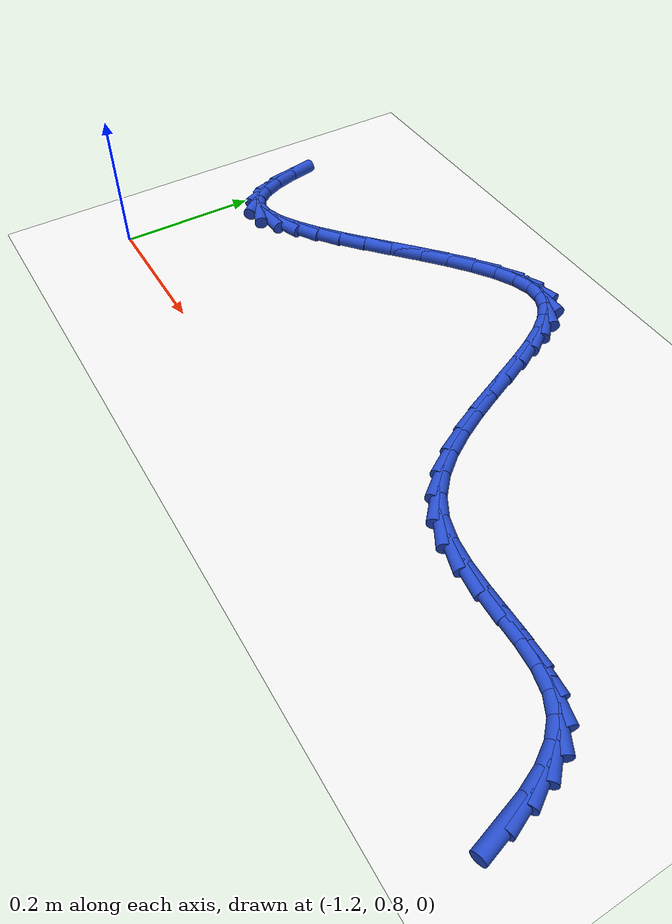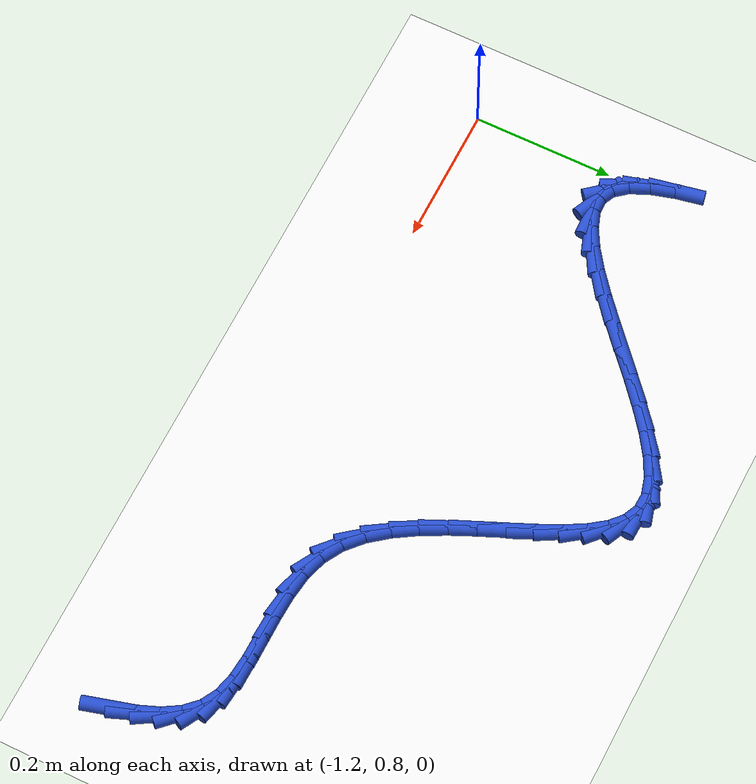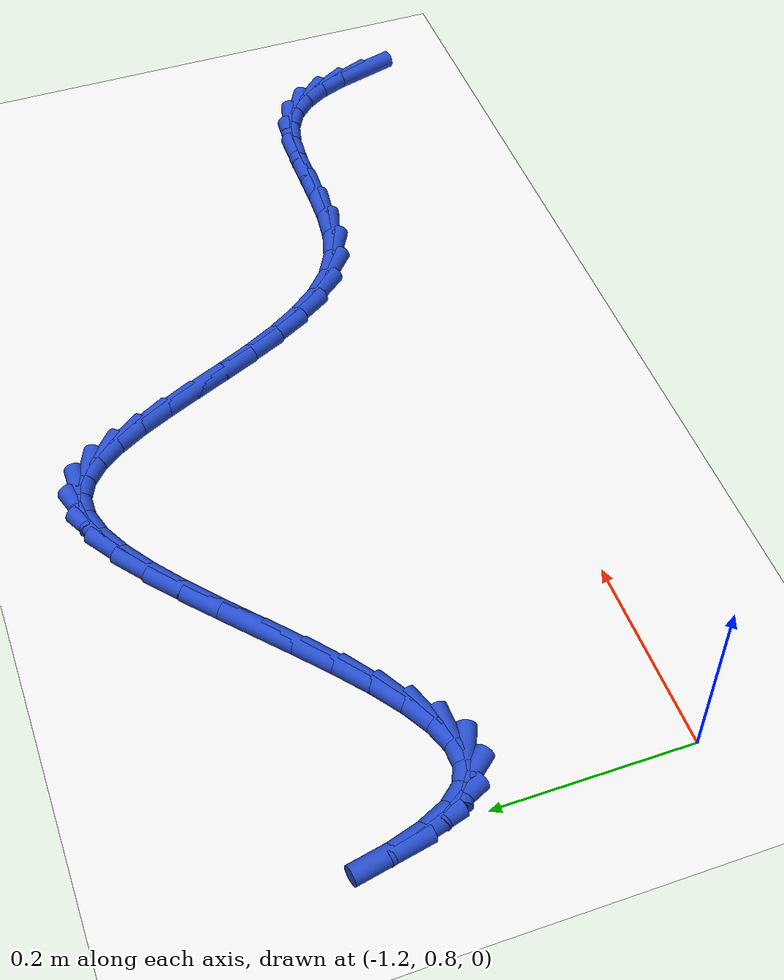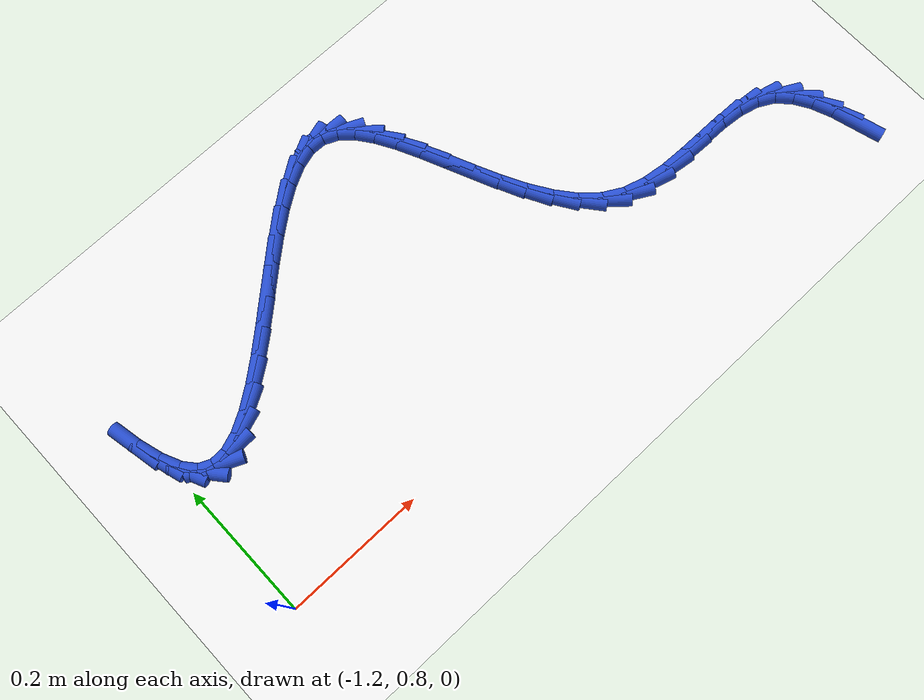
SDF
<sdf version="1.6">
 <world name="default">
  <model name="ground_plane">
   <static>1</static>
   <link name="link">
    <collision name="collision">
     <geometry><plane><normal>0 0 1</normal><size>100 100</size></plane></geometry>
     <surface><friction><ode><mu>100</mu><mu2>50</mu2></ode></friction></surface>
    </collision>
    <visual name="visual">
     <cast_shadows>0</cast_shadows>
     <geometry><plane><normal>0 0 1</normal><size>100 100</size></plane></geometry>
     <material>
      <script><uri>file://media/materials/scripts/gazebo.material</uri><name>Gazebo/WhiteGlow</name></script>
     </material>
    </visual>
   </link>
  </model>
  <model name="line">
   <link name="link_24">
    <pose>-0.207194051878601 0.7626064993472014 0.01 0 1.57 -1.2974648877573172</pose>
    <collision name="collision">
     <geometry><cylinder><radius>0.01</radius><length>0.08</length></cylinder></geometry>
    </collision>
    <visual name="visual">
     <material>
      <script><name>Gazebo/Blue</name><uri>file://media/materials/scripts/gazebo.material</uri></script>
     </material>
     <geometry><cylinder><radius>0.01</radius><length>0.08</length></cylinder></geometry>
    </visual>
   </link>
   <link name="link_25">
    <pose>-0.21626301968401798 0.7949554568704682 0.01 0 1.57 -1.1916132885952049</pose>
    <collision name="collision">
     <geometry><cylinder><radius>0.01</radius><length>0.08</length></cylinder></geometry>
    </collision>
    <visual name="visual">
     <material>
      <script><name>Gazebo/Blue</name><uri>file://media/materials/scripts/gazebo.material</uri></script>
     </material>
     <geometry><cylinder><radius>0.01</radius><length>0.08</length></cylinder></geometry>
    </visual>
   </link>
   <link name="link_26">
    <pose>-0.22777732431348252 0.8238520558207857 0.01 0 1.57 -1.0291839303407309</pose>
    <collision name="collision">
     <geometry><cylinder><radius>0.01</radius><length>0.08</length></cylinder></geometry>
    </collision>
    <visual name="visual">
     <material>
      <script><name>Gazebo/Blue</name><uri>file://media/materials/scripts/gazebo.material</uri></script>
     </material>
     <geometry><cylinder><radius>0.01</radius><length>0.08</length></cylinder></geometry>
    </visual>
   </link>
   <link name="link_27">
    <pose>-0.24250996560101373 0.8483401970732701 0.01 0 1.57 -0.7959560904787552</pose>
    <collision name="collision">
     <geometry><cylinder><radius>0.01</radius><length>0.08</length></cylinder></geometry>
    </collision>
    <visual name="visual">
     <material>
      <script><name>Gazebo/Blue</name><uri>file://media/materials/scripts/gazebo.material</uri></script>
     </material>
     <geometry><cylinder><radius>0.01</radius><length>0.08</length></cylinder></geometry>
    </visual>
   </link>
   <link name="link_28">
    <pose>-0.2612339433806306 0.8674637815030369 0.01 0 1.57 -0.5015162175015697</pose>
    <collision name="collision">
     <geometry><cylinder><radius>0.01</radius><length>0.08</length></cylinder></geometry>
    </collision>
    <visual name="visual">
     <material>
      <script><name>Gazebo/Blue</name><uri>file://media/materials/scripts/gazebo.material</uri></script>
     </material>
     <geometry><cylinder><radius>0.01</radius><length>0.08</length></cylinder></geometry>
    </visual>
   </link>
   <link name="link_29">
    <pose>-0.28468452212913153 0.8803210971617492 0.01 0 1.57 -0.24486192757231562</pose>
    <collision name="collision">
     <geometry><cylinder><radius>0.01</radius><length>0.08</length></cylinder></geometry>
    </collision>
    <visual name="visual">
     <material>
      <script><name>Gazebo/Blue</name><uri>file://media/materials/scripts/gazebo.material</uri></script>
     </material>
     <geometry><cylinder><radius>0.01</radius><length>0.08</length></cylinder></geometry>
    </visual>
   </link>
   <link name="link_30">
    <pose>-0.3126891901480948 0.8873187908061111 0.01 0 1.57 -0.09148593844415343</pose>
    <collision name="collision">
     <geometry><cylinder><radius>0.01</radius><length>0.08</length></cylinder></geometry>
    </collision>
    <visual name="visual">
     <material>
      <script><name>Gazebo/Blue</name><uri>file://media/materials/scripts/gazebo.material</uri></script>
     </material>
     <geometry><cylinder><radius>0.01</radius><length>0.08</length></cylinder></geometry>
    </visual>
   </link>
   <link name="link_31">
    <pose>-0.344144945165766 0.8902046056820369 0.01 0 1.57 -0.0172550529744351</pose>
    <collision name="collision">
     <geometry><cylinder><radius>0.01</radius><length>0.08</length></cylinder></geometry>
    </collision>
    <visual name="visual">
     <material>
      <script><name>Gazebo/Blue</name><uri>file://media/materials/scripts/gazebo.material</uri></script>
     </material>
     <geometry><cylinder><radius>0.01</radius><length>0.08</length></cylinder></geometry>
    </visual>
   </link>
   <link name="link_32">
    <pose>-0.3779065058037037 0.8907872210225112 0.01 0 1.57 -0.0025226114490034092</pose>
    <collision name="collision">
     <geometry><cylinder><radius>0.01</radius><length>0.08</length></cylinder></geometry>
    </collision>
    <visual name="visual">
     <material>
      <script><name>Gazebo/Blue</name><uri>file://media/materials/scripts/gazebo.material</uri></script>
     </material>
     <geometry><cylinder><radius>0.01</radius><length>0.08</length></cylinder></geometry>
    </visual>
   </link>
   <link name="link_33">
    <pose>-0.4128285906834664 0.8908753160605183 0.01 0 1.57 -0.0401147372451347</pose>
    <collision name="collision">
     <geometry><cylinder><radius>0.01</radius><length>0.08</length></cylinder></geometry>
    </collision>
    <visual name="visual">
     <material>
      <script><name>Gazebo/Blue</name><uri>file://media/materials/scripts/gazebo.material</uri></script>
     </material>
     <geometry><cylinder><radius>0.01</radius><length>0.08</length></cylinder></geometry>
    </visual>
   </link>
   <link name="link_34">
    <pose>-0.4477659184266132 0.8922775700290428 0.01 0 1.57 -0.13305874661754688</pose>
    <collision name="collision">
     <geometry><cylinder><radius>0.01</radius><length>0.08</length></cylinder></geometry>
    </collision>
    <visual name="visual">
     <material>
      <script><name>Gazebo/Blue</name><uri>file://media/materials/scripts/gazebo.material</uri></script>
     </material>
     <geometry><cylinder><radius>0.01</radius><length>0.08</length></cylinder></geometry>
    </visual>
   </link>
   <link name="link_35">
    <pose>-0.48157320765470224 0.8968026621610689 0.01 0 1.57 -0.2913700513080233</pose>
    <collision name="collision">
     <geometry><cylinder><radius>0.01</radius><length>0.08</length></cylinder></geometry>
    </collision>
    <visual name="visual">
     <material>
      <script><name>Gazebo/Blue</name><uri>file://media/materials/scripts/gazebo.material</uri></script>
     </material>
     <geometry><cylinder><radius>0.01</radius><length>0.08</length></cylinder></geometry>
    </visual>
   </link>
   <link name="link_36">
    <pose>-0.513105176989292 0.9062592716895809 0.01 0 1.57 -0.5166177321962132</pose>
    <collision name="collision">
     <geometry><cylinder><radius>0.01</radius><length>0.08</length></cylinder></geometry>
    </collision>
    <visual name="visual">
     <material>
      <script><name>Gazebo/Blue</name><uri>file://media/materials/scripts/gazebo.material</uri></script>
     </material>
     <geometry><cylinder><radius>0.01</radius><length>0.08</length></cylinder></geometry>
    </visual>
   </link>
   <link name="link_37">
    <pose>-0.5413101616347828 0.922281943203062 0.01 0 1.57 -0.7348717533185812</pose>
    <collision name="collision">
     <geometry><cylinder><radius>0.01</radius><length>0.08</length></cylinder></geometry>
    </collision>
    <visual name="visual">
     <material>
      <script><name>Gazebo/Blue</name><uri>file://media/materials/scripts/gazebo.material</uri></script>
     </material>
     <geometry><cylinder><radius>0.01</radius><length>0.08</length></cylinder></geometry>
    </visual>
   </link>
   <link name="link_38">
    <pose>-0.5661100494906615 0.944694332157785 0.01 0 1.57 -0.8993139980327384</pose>
    <collision name="collision">
     <geometry><cylinder><radius>0.01</radius><length>0.08</length></cylinder></geometry>
    </collision>
    <visual name="visual">
     <material>
      <script><name>Gazebo/Blue</name><uri>file://media/materials/scripts/gazebo.material</uri></script>
     </material>
     <geometry><cylinder><radius>0.01</radius><length>0.08</length></cylinder></geometry>
    </visual>
   </link>
   <link name="link_39">
    <pose>-0.5880043153397887 0.9722457342806643 0.01 0 1.57 -1.0155283808442939</pose>
    <collision name="collision">
     <geometry><cylinder><radius>0.01</radius><length>0.08</length></cylinder></geometry>
    </collision>
    <visual name="visual">
     <material>
      <script><name>Gazebo/Blue</name><uri>file://media/materials/scripts/gazebo.material</uri></script>
     </material>
     <geometry><cylinder><radius>0.01</radius><length>0.08</length></cylinder></geometry>
    </visual>
   </link>
   <link name="link_40">
    <pose>-0.6075000258484518 1.0036713237628607 0.01 0 1.57 -1.0934524089914617</pose>
    <collision name="collision">
     <geometry><cylinder><radius>0.01</radius><length>0.08</length></cylinder></geometry>
    </collision>
    <visual name="visual">
     <material>
      <script><name>Gazebo/Blue</name><uri>file://media/materials/scripts/gazebo.material</uri></script>
     </material>
     <geometry><cylinder><radius>0.01</radius><length>0.08</length></cylinder></geometry>
    </visual>
   </link>
   <link name="link_41">
    <pose>-0.6251042476829389 1.0377062747955361 0.01 0 1.57 -1.140935907727501</pose>
    <collision name="collision">
     <geometry><cylinder><radius>0.01</radius><length>0.08</length></cylinder></geometry>
    </collision>
    <visual name="visual">
     <material>
      <script><name>Gazebo/Blue</name><uri>file://media/materials/scripts/gazebo.material</uri></script>
     </material>
     <geometry><cylinder><radius>0.01</radius><length>0.08</length></cylinder></geometry>
    </visual>
   </link>
   <link name="link_42">
    <pose>-0.6413240475095378 1.073085761569852 0.01 0 1.57 -1.1624396435981152</pose>
    <collision name="collision">
     <geometry><cylinder><radius>0.01</radius><length>0.08</length></cylinder></geometry>
    </collision>
    <visual name="visual">
     <material>
      <script><name>Gazebo/Blue</name><uri>file://media/materials/scripts/gazebo.material</uri></script>
     </material>
     <geometry><cylinder><radius>0.01</radius><length>0.08</length></cylinder></geometry>
    </visual>
   </link>
   <link name="link_43">
    <pose>-0.6566664919945361 1.1085449582769695 0.01 0 1.57 -1.1589432614752928</pose>
    <collision name="collision">
     <geometry><cylinder><radius>0.01</radius><length>0.08</length></cylinder></geometry>
    </collision>
    <visual name="visual">
     <material>
      <script><name>Gazebo/Blue</name><uri>file://media/materials/scripts/gazebo.material</uri></script>
     </material>
     <geometry><cylinder><radius>0.01</radius><length>0.08</length></cylinder></geometry>
    </visual>
   </link>
   <link name="link_44">
    <pose>-0.6716386478042213 1.1428190391080502 0.01 0 1.57 -1.1275411217396751</pose>
    <collision name="collision">
     <geometry><cylinder><radius>0.01</radius><length>0.08</length></cylinder></geometry>
    </collision>
    <visual name="visual">
     <material>
      <script><name>Gazebo/Blue</name><uri>file://media/materials/scripts/gazebo.material</uri></script>
     </material>
     <geometry><cylinder><radius>0.01</radius><length>0.08</length></cylinder></geometry>
    </visual>
   </link>
   <link name="link_45">
    <pose>-0.6867475816048817 1.1746431782542555 0.01 0 1.57 -1.059995791432483</pose>
    <collision name="collision">
     <geometry><cylinder><radius>0.01</radius><length>0.08</length></cylinder></geometry>
    </collision>
    <visual name="visual">
     <material>
      <script><name>Gazebo/Blue</name><uri>file://media/materials/scripts/gazebo.material</uri></script>
     </material>
     <geometry><cylinder><radius>0.01</radius><length>0.08</length></cylinder></geometry>
    </visual>
   </link>
   <link name="link_46">
    <pose>-0.7025003600628049 1.2027525499067473 0.01 0 1.57 -0.9396842626617987</pose>
    <collision name="collision">
     <geometry><cylinder><radius>0.01</radius><length>0.08</length></cylinder></geometry>
    </collision>
    <visual name="visual">
     <material>
      <script><name>Gazebo/Blue</name><uri>file://media/materials/scripts/gazebo.material</uri></script>
     </material>
     <geometry><cylinder><radius>0.01</radius><length>0.08</length></cylinder></geometry>
    </visual>
   </link>
   <link name="link_47">
    <pose>-0.7194040498442784 1.2258823282566862 0.01 0 1.57 -0.738142844136037</pose>
    <collision name="collision">
     <geometry><cylinder><radius>0.01</radius><length>0.08</length></cylinder></geometry>
    </collision>
    <visual name="visual">
     <material>
      <script><name>Gazebo/Blue</name><uri>file://media/materials/scripts/gazebo.material</uri></script>
     </material>
     <geometry><cylinder><radius>0.01</radius><length>0.08</length></cylinder></geometry>
    </visual>
   </link>
   <link name="link_48">
    <pose>-0.7379657176155897 1.2427676874952338 0.01 0 1.57 -0.4248219263611786</pose>
    <collision name="collision">
     <geometry><cylinder><radius>0.01</radius><length>0.08</length></cylinder></geometry>
    </collision>
    <visual name="visual">
     <material>
      <script><name>Gazebo/Blue</name><uri>file://media/materials/scripts/gazebo.material</uri></script>
     </material>
     <geometry><cylinder><radius>0.01</radius><length>0.08</length></cylinder></geometry>
    </visual>
   </link>
   <link name="link_49">
    <pose>-0.7586924300430272 1.2521438018135522 0.01 0 1.57 -0.03178304099105054</pose>
    <collision name="collision">
     <geometry><cylinder><radius>0.01</radius><length>0.08</length></cylinder></geometry>
    </collision>
    <visual name="visual">
     <material>
      <script><name>Gazebo/Blue</name><uri>file://media/materials/scripts/gazebo.material</uri></script>
     </material>
     <geometry><cylinder><radius>0.01</radius><length>0.08</length></cylinder></geometry>
    </visual>
   </link>
   <link name="link_50">
    <pose>-0.7820406890772185 1.252886130461662 0.01 0 1.57 0.28170518062247596</pose>
    <collision name="collision">
     <geometry><cylinder><radius>0.01</radius><length>0.08</length></cylinder></geometry>
    </collision>
    <visual name="visual">
     <material>
      <script><name>Gazebo/Blue</name><uri>file://media/materials/scripts/gazebo.material</uri></script>
     </material>
     <geometry><cylinder><radius>0.01</radius><length>0.08</length></cylinder></geometry>
    </visual>
   </link>
   <link name="link_51">
    <pose>-0.8079164106611737 1.2453976601260228 0.01 0 1.57 0.4748050582417541</pose>
    <collision name="collision">
     <geometry><cylinder><radius>0.01</radius><length>0.08</length></cylinder></geometry>
    </collision>
    <visual name="visual">
     <material>
      <script><name>Gazebo/Blue</name><uri>file://media/materials/scripts/gazebo.material</uri></script>
     </material>
     <geometry><cylinder><radius>0.01</radius><length>0.08</length></cylinder></geometry>
    </visual>
   </link>
   <link name="link_52">
    <pose>-0.8358872080690265 1.2310199531222934 0.01 0 1.57 0.5917166206231078</pose>
    <collision name="collision">
     <geometry><cylinder><radius>0.01</radius><length>0.08</length></cylinder></geometry>
    </collision>
    <visual name="visual">
     <material>
      <script><name>Gazebo/Blue</name><uri>file://media/materials/scripts/gazebo.material</uri></script>
     </material>
     <geometry><cylinder><radius>0.01</radius><length>0.08</length></cylinder></geometry>
    </visual>
   </link>
   <link name="link_53">
    <pose>-0.8655157696188389 1.211108235399825 0.01 0 1.57 0.6629958302061411</pose>
    <collision name="collision">
     <geometry><cylinder><radius>0.01</radius><length>0.08</length></cylinder></geometry>
    </collision>
    <visual name="visual">
     <material>
      <script><name>Gazebo/Blue</name><uri>file://media/materials/scripts/gazebo.material</uri></script>
     </material>
     <geometry><cylinder><radius>0.01</radius><length>0.08</length></cylinder></geometry>
    </visual>
   </link>
   <link name="link_54">
    <pose>-0.8963647836286723 1.1870177329079667 0.01 0 1.57 0.7049844362468882</pose>
    <collision name="collision">
     <geometry><cylinder><radius>0.01</radius><length>0.08</length></cylinder></geometry>
    </collision>
    <visual name="visual">
     <material>
      <script><name>Gazebo/Blue</name><uri>file://media/materials/scripts/gazebo.material</uri></script>
     </material>
     <geometry><cylinder><radius>0.01</radius><length>0.08</length></cylinder></geometry>
    </visual>
   </link>
   <link name="link_55">
    <pose>-0.927996938416589 1.1601036715960702 0.01 0 1.57 0.7258997648162204</pose>
    <collision name="collision">
     <geometry><cylinder><radius>0.01</radius><length>0.08</length></cylinder></geometry>
    </collision>
    <visual name="visual">
     <material>
      <script><name>Gazebo/Blue</name><uri>file://media/materials/scripts/gazebo.material</uri></script>
     </material>
     <geometry><cylinder><radius>0.01</radius><length>0.08</length></cylinder></geometry>
    </visual>
   </link>
   <link name="link_56">
    <pose>-0.9599749223006493 1.1317212774134848 0.01 0 1.57 0.7292979697665133</pose>
    <collision name="collision">
     <geometry><cylinder><radius>0.01</radius><length>0.08</length></cylinder></geometry>
    </collision>
    <visual name="visual">
     <material>
      <script><name>Gazebo/Blue</name><uri>file://media/materials/scripts/gazebo.material</uri></script>
     </material>
     <geometry><cylinder><radius>0.01</radius><length>0.08</length></cylinder></geometry>
    </visual>
   </link>
   <link name="link_57">
    <pose>-0.9918614235989159 1.1032257763095612 0.01 0 1.57 0.7154858670351756</pose>
    <collision name="collision">
     <geometry><cylinder><radius>0.01</radius><length>0.08</length></cylinder></geometry>
    </collision>
    <visual name="visual">
     <material>
      <script><name>Gazebo/Blue</name><uri>file://media/materials/scripts/gazebo.material</uri></script>
     </material>
     <geometry><cylinder><radius>0.01</radius><length>0.08</length></cylinder></geometry>
    </visual>
   </link>
   <link name="link_58">
    <pose>-1.0232191306294505 1.0759723942336499 0.01 0 1.57 0.6815800344077225</pose>
    <collision name="collision">
     <geometry><cylinder><radius>0.01</radius><length>0.08</length></cylinder></geometry>
    </collision>
    <visual name="visual">
     <material>
      <script><name>Gazebo/Blue</name><uri>file://media/materials/scripts/gazebo.material</uri></script>
     </material>
     <geometry><cylinder><radius>0.01</radius><length>0.08</length></cylinder></geometry>
    </visual>
   </link>
   <link name="link_59">
    <pose>-1.0536107317103147 1.0513163571351014 0.01 0 1.57 0.6201951381950903</pose>
    <collision name="collision">
     <geometry><cylinder><radius>0.01</radius><length>0.08</length></cylinder></geometry>
    </collision>
    <visual name="visual">
     <material>
      <script><name>Gazebo/Blue</name><uri>file://media/materials/scripts/gazebo.material</uri></script>
     </material>
     <geometry><cylinder><radius>0.01</radius><length>0.08</length></cylinder></geometry>
    </visual>
   </link>
   <link name="link_60">
    <pose>-1.0825989151595696 1.030612890963266 0.01 0 1.57 0.5158866542104761</pose>
    <collision name="collision">
     <geometry><cylinder><radius>0.01</radius><length>0.08</length></cylinder></geometry>
    </collision>
    <visual name="visual">
     <material>
      <script><name>Gazebo/Blue</name><uri>file://media/materials/scripts/gazebo.material</uri></script>
     </material>
     <geometry><cylinder><radius>0.01</radius><length>0.08</length></cylinder></geometry>
    </visual>
   </link>
   <link name="link_61">
    <pose>-1.1097463692952774 1.0152172216674935 0.01 0 1.57 0.33769007486854064</pose>
    <collision name="collision">
     <geometry><cylinder><radius>0.01</radius><length>0.08</length></cylinder></geometry>
    </collision>
    <visual name="visual">
     <material>
      <script><name>Gazebo/Blue</name><uri>file://media/materials/scripts/gazebo.material</uri></script>
     </material>
     <geometry><cylinder><radius>0.01</radius><length>0.08</length></cylinder></geometry>
    </visual>
   </link>
   <link name="link_62">
    <pose>-1.1346157824354997 1.0064845751971345 0.01 0 1.57 0.032235635877049106</pose>
    <collision name="collision">
     <geometry><cylinder><radius>0.01</radius><length>0.08</length></cylinder></geometry>
    </collision>
    <visual name="visual">
     <material>
      <script><name>Gazebo/Blue</name><uri>file://media/materials/scripts/gazebo.material</uri></script>
     </material>
     <geometry><cylinder><radius>0.01</radius><length>0.08</length></cylinder></geometry>
    </visual>
   </link>
   <link name="link_63">
    <pose>-1.156769842898298 1.0057701775015397 0.01 0 1.57 -0.42759001840637256</pose>
    <collision name="collision">
     <geometry><cylinder><radius>0.01</radius><length>0.08</length></cylinder></geometry>
    </collision>
    <visual name="visual">
     <material>
      <script><name>Gazebo/Blue</name><uri>file://media/materials/scripts/gazebo.material</uri></script>
     </material>
     <geometry><cylinder><radius>0.01</radius><length>0.08</length></cylinder></geometry>
    </visual>
   </link>
   <link name="link_64">
    <pose>-1.1757712392341662 1.0144292536124595 0.01 0 1.57 -0.8789164556793228</pose>
    <collision name="collision">
     <geometry><cylinder><radius>0.01</radius><length>0.08</length></cylinder></geometry>
    </collision>
    <visual name="visual">
     <material>
      <script><name>Gazebo/Blue</name><uri>file://media/materials/scripts/gazebo.material</uri></script>
     </material>
     <geometry><cylinder><radius>0.01</radius><length>0.08</length></cylinder></geometry>
    </visual>
   </link>
   <link name="link_65">
    <pose>-1.1913351798251317 1.0332149070739096 0.01 0 1.57 -1.1440539094973783</pose>
    <collision name="collision">
     <geometry><cylinder><radius>0.01</radius><length>0.08</length></cylinder></geometry>
    </collision>
    <visual name="visual">
     <material>
      <script><name>Gazebo/Blue</name><uri>file://media/materials/scripts/gazebo.material</uri></script>
     </material>
     <geometry><cylinder><radius>0.01</radius><length>0.08</length></cylinder></geometry>
    </visual>
   </link>
   <link name="link_66">
    <pose>-1.2037660164721011 1.0605544067610935 0.01 0 1.57 -1.2897915619573241</pose>
    <collision name="collision">
     <geometry><cylinder><radius>0.01</radius><length>0.08</length></cylinder></geometry>
    </collision>
    <visual name="visual">
     <material>
      <script><name>Gazebo/Blue</name><uri>file://media/materials/scripts/gazebo.material</uri></script>
     </material>
     <geometry><cylinder><radius>0.01</radius><length>0.08</length></cylinder></geometry>
    </visual>
   </link>
   <link name="link_67">
    <pose>-1.2135103312649558 1.094313521367006 0.01 0 1.57 -1.3760439174068004</pose>
    <collision name="collision">
     <geometry><cylinder><radius>0.01</radius><length>0.08</length></cylinder></geometry>
    </collision>
    <visual name="visual">
     <material>
      <script><name>Gazebo/Blue</name><uri>file://media/materials/scripts/gazebo.material</uri></script>
     </material>
     <geometry><cylinder><radius>0.01</radius><length>0.08</length></cylinder></geometry>
    </visual>
   </link>
  </model>
 </world>
</sdf>
